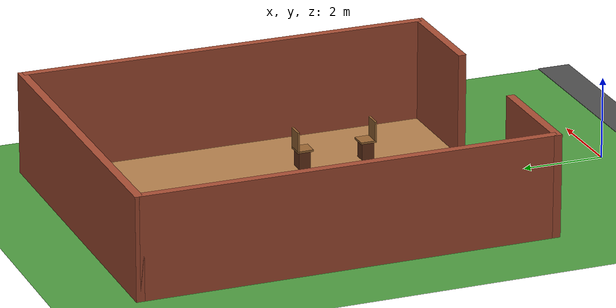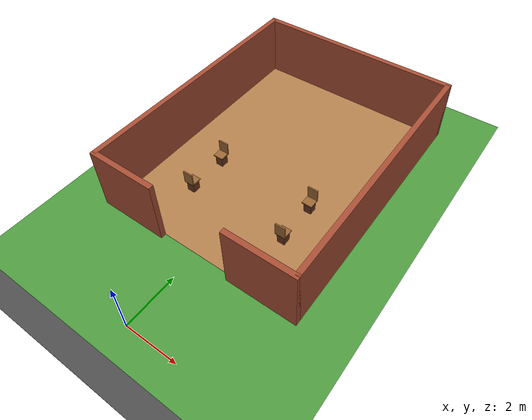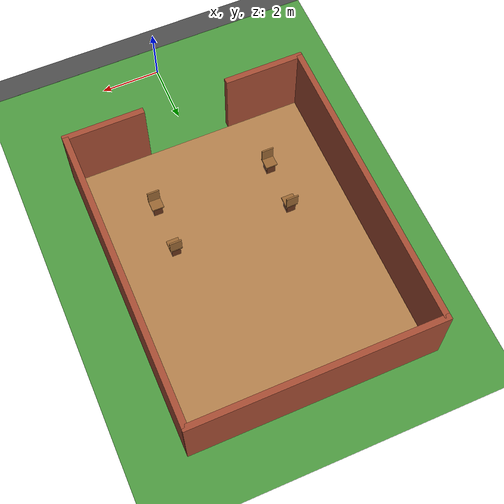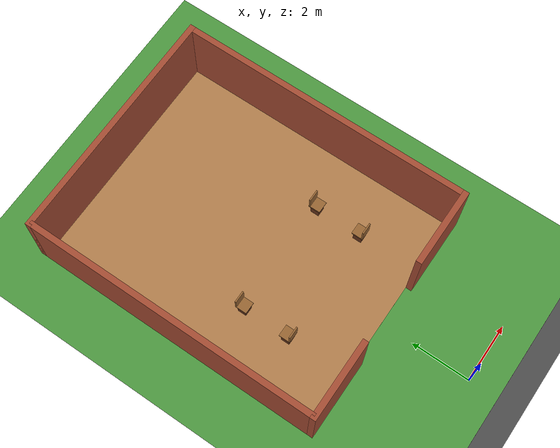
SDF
<sdf version="1.6">
 <world name="indoor_outdoor_campus">
  <include><uri>model://sun</uri></include>
  <model name="ground_plane">
   <static>true</static>
   <link name="link">
    <collision name="collision">
     <geometry><plane><normal>0 0 1</normal><size>100 100</size></plane></geometry>
     <surface><friction><ode><mu>100</mu><mu2>50</mu2></ode></friction></surface>
    </collision>
    <visual name="visual">
     <cast_shadows>false</cast_shadows>
     <geometry><plane><normal>0 0 1</normal><size>100 100</size></plane></geometry>
     <material>
      <script><uri>file://media/materials/scripts/gazebo.material</uri><name>Gazebo/Grass</name></script>
     </material>
    </visual>
   </link>
  </model>
  <model name="asphalt_road">
   <static>true</static>
   <pose>0 -5 0.005 0 0 0</pose>
   <link name="link">
    <visual name="visual">
     <geometry><box><size>100 8 0.01</size></box></geometry>
     <material>
      <script><uri>file://media/materials/scripts/gazebo.material</uri><name>Gazebo/Asphalt</name></script>
     </material>
    </visual>
    <collision name="collision"><geometry><box><size>100 8 0.01</size></box></geometry></collision>
   </link>
  </model>
  <model name="indoor_building">
   <pose>0 8 0 0 0 0</pose>
   <static>true</static>
   <link name="walls">
    <collision name="left_wall_col">
     <pose>-4 0 1.25 0 0 0</pose>
     <geometry><box><size>0.2 10 2.5</size></box></geometry>
    </collision>
    <visual name="left_wall_vis">
     <pose>-4 0 1.25 0 0 0</pose>
     <geometry><box><size>0.2 10 2.5</size></box></geometry>
     <material>
      <script><uri>file://media/materials/scripts/gazebo.material</uri><name>Gazebo/Bricks</name></script>
     </material>
    </visual>
    <collision name="right_wall_col">
     <pose>4 0 1.25 0 0 0</pose>
     <geometry><box><size>0.2 10 2.5</size></box></geometry>
    </collision>
    <visual name="right_wall_vis">
     <pose>4 0 1.25 0 0 0</pose>
     <geometry><box><size>0.2 10 2.5</size></box></geometry>
     <material>
      <script><uri>file://media/materials/scripts/gazebo.material</uri><name>Gazebo/Bricks</name></script>
     </material>
    </visual>
    <collision name="back_wall_col">
     <pose>0 5 1.25 0 0 0</pose>
     <geometry><box><size>8.2 0.2 2.5</size></box></geometry>
    </collision>
    <visual name="back_wall_vis">
     <pose>0 5 1.25 0 0 0</pose>
     <geometry><box><size>8.2 0.2 2.5</size></box></geometry>
     <material>
      <script><uri>file://media/materials/scripts/gazebo.material</uri><name>Gazebo/Bricks</name></script>
     </material>
    </visual>
    <collision name="front_left_wall_col">
     <pose>-2.75 -5 1.25 0 0 0</pose>
     <geometry><box><size>2.7 0.2 2.5</size></box></geometry>
    </collision>
    <visual name="front_left_wall_vis">
     <pose>-2.75 -5 1.25 0 0 0</pose>
     <geometry><box><size>2.7 0.2 2.5</size></box></geometry>
     <material>
      <script><uri>file://media/materials/scripts/gazebo.material</uri><name>Gazebo/Bricks</name></script>
     </material>
    </visual>
    <collision name="front_right_wall_col">
     <pose>2.75 -5 1.25 0 0 0</pose>
     <geometry><box><size>2.7 0.2 2.5</size></box></geometry>
    </collision>
    <visual name="front_right_wall_vis">
     <pose>2.75 -5 1.25 0 0 0</pose>
     <geometry><box><size>2.7 0.2 2.5</size></box></geometry>
     <material>
      <script><uri>file://media/materials/scripts/gazebo.material</uri><name>Gazebo/Bricks</name></script>
     </material>
    </visual>
   </link>
  </model>
  <model name="indoor_floor">
   <static>true</static>
   <pose>0 8 0.005 0 0 0</pose>
   <link name="link">
    <visual name="visual">
     <geometry><box><size>7.8 9.8 0.01</size></box></geometry>
     <material>
      <script><uri>file://media/materials/scripts/gazebo.material</uri><name>Gazebo/WoodFloor</name></script>
     </material>
    </visual>
    <collision name="collision"><geometry><box><size>7.8 9.8 0.01</size></box></geometry></collision>
   </link>
  </model>
  <model name="chair_1">
   <pose>-2 5.2 0.01 0 0 0</pose>
   <static>false</static>
   <link name="link">
    <collision name="seat_collision">
     <pose>0 0 0.45 0 0 0</pose>
     <geometry><box><size>0.4 0.4 0.05</size></box></geometry>
    </collision>
    <visual name="seat_visual">
     <pose>0 0 0.45 0 0 0</pose>
     <geometry><box><size>0.4 0.4 0.05</size></box></geometry>
     <material><ambient>0.6 0.4 0.2 1.0</ambient></material>
    </visual>
    <collision name="back_collision">
     <pose>0 -0.175 0.7 0 0 0</pose>
     <geometry><box><size>0.4 0.05 0.5</size></box></geometry>
    </collision>
    <visual name="back_visual">
     <pose>0 -0.175 0.7 0 0 0</pose>
     <geometry><box><size>0.4 0.05 0.5</size></box></geometry>
     <material><ambient>0.6 0.4 0.2 1.0</ambient></material>
    </visual>
    <collision name="base_collision">
     <pose>0 0 0.225 0 0 0</pose>
     <geometry><box><size>0.3 0.3 0.45</size></box></geometry>
    </collision>
    <visual name="base_visual">
     <pose>0 0 0.225 0 0 0</pose>
     <geometry><box><size>0.3 0.3 0.45</size></box></geometry>
     <material><ambient>0.4 0.2 0.1 1.0</ambient></material>
    </visual>
    <inertial><mass>3.0</mass><inertia><ixx>0.1</ixx><iyy>0.1</iyy><izz>0.1</izz></inertia></inertial>
   </link>
  </model>
  <model name="chair_2">
   <pose>-2 6.8 0.01 0 0 3.1415</pose>
   <static>false</static>
   <link name="link">
    <collision name="seat_collision">
     <pose>0 0 0.45 0 0 0</pose>
     <geometry><box><size>0.4 0.4 0.05</size></box></geometry>
    </collision>
    <visual name="seat_visual">
     <pose>0 0 0.45 0 0 0</pose>
     <geometry><box><size>0.4 0.4 0.05</size></box></geometry>
     <material><ambient>0.6 0.4 0.2 1.0</ambient></material>
    </visual>
    <collision name="back_collision">
     <pose>0 -0.175 0.7 0 0 0</pose>
     <geometry><box><size>0.4 0.05 0.5</size></box></geometry>
    </collision>
    <visual name="back_visual">
     <pose>0 -0.175 0.7 0 0 0</pose>
     <geometry><box><size>0.4 0.05 0.5</size></box></geometry>
     <material><ambient>0.6 0.4 0.2 1.0</ambient></material>
    </visual>
    <collision name="base_collision">
     <pose>0 0 0.225 0 0 0</pose>
     <geometry><box><size>0.3 0.3 0.45</size></box></geometry>
    </collision>
    <visual name="base_visual">
     <pose>0 0 0.225 0 0 0</pose>
     <geometry><box><size>0.3 0.3 0.45</size></box></geometry>
     <material><ambient>0.4 0.2 0.1 1.0</ambient></material>
    </visual>
    <inertial><mass>3.0</mass><inertia><ixx>0.1</ixx><iyy>0.1</iyy><izz>0.1</izz></inertia></inertial>
   </link>
  </model>
  <model name="chair_3">
   <pose>2 5.2 0.01 0 0 0</pose>
   <static>false</static>
   <link name="link">
    <collision name="seat_collision">
     <pose>0 0 0.45 0 0 0</pose>
     <geometry><box><size>0.4 0.4 0.05</size></box></geometry>
    </collision>
    <visual name="seat_visual">
     <pose>0 0 0.45 0 0 0</pose>
     <geometry><box><size>0.4 0.4 0.05</size></box></geometry>
     <material><ambient>0.6 0.4 0.2 1.0</ambient></material>
    </visual>
    <collision name="back_collision">
     <pose>0 -0.175 0.7 0 0 0</pose>
     <geometry><box><size>0.4 0.05 0.5</size></box></geometry>
    </collision>
    <visual name="back_visual">
     <pose>0 -0.175 0.7 0 0 0</pose>
     <geometry><box><size>0.4 0.05 0.5</size></box></geometry>
     <material><ambient>0.6 0.4 0.2 1.0</ambient></material>
    </visual>
    <collision name="base_collision">
     <pose>0 0 0.225 0 0 0</pose>
     <geometry><box><size>0.3 0.3 0.45</size></box></geometry>
    </collision>
    <visual name="base_visual">
     <pose>0 0 0.225 0 0 0</pose>
     <geometry><box><size>0.3 0.3 0.45</size></box></geometry>
     <material><ambient>0.4 0.2 0.1 1.0</ambient></material>
    </visual>
    <inertial><mass>3.0</mass><inertia><ixx>0.1</ixx><iyy>0.1</iyy><izz>0.1</izz></inertia></inertial>
   </link>
  </model>
  <model name="chair_4">
   <pose>2 6.8 0.01 0 0 3.1415</pose>
   <static>false</static>
   <link name="link">
    <collision name="seat_collision">
     <pose>0 0 0.45 0 0 0</pose>
     <geometry><box><size>0.4 0.4 0.05</size></box></geometry>
    </collision>
    <visual name="seat_visual">
     <pose>0 0 0.45 0 0 0</pose>
     <geometry><box><size>0.4 0.4 0.05</size></box></geometry>
     <material><ambient>0.6 0.4 0.2 1.0</ambient></material>
    </visual>
    <collision name="back_collision">
     <pose>0 -0.175 0.7 0 0 0</pose>
     <geometry><box><size>0.4 0.05 0.5</size></box></geometry>
    </collision>
    <visual name="back_visual">
     <pose>0 -0.175 0.7 0 0 0</pose>
     <geometry><box><size>0.4 0.05 0.5</size></box></geometry>
     <material><ambient>0.6 0.4 0.2 1.0</ambient></material>
    </visual>
    <collision name="base_collision">
     <pose>0 0 0.225 0 0 0</pose>
     <geometry><box><size>0.3 0.3 0.45</size></box></geometry>
    </collision>
    <visual name="base_visual">
     <pose>0 0 0.225 0 0 0</pose>
     <geometry><box><size>0.3 0.3 0.45</size></box></geometry>
     <material><ambient>0.4 0.2 0.1 1.0</ambient></material>
    </visual>
    <inertial><mass>3.0</mass><inertia><ixx>0.1</ixx><iyy>0.1</iyy><izz>0.1</izz></inertia></inertial>
   </link>
  </model>
 </world>
</sdf>
